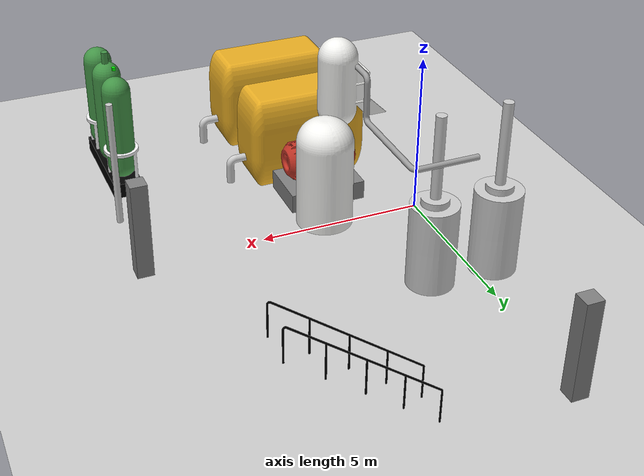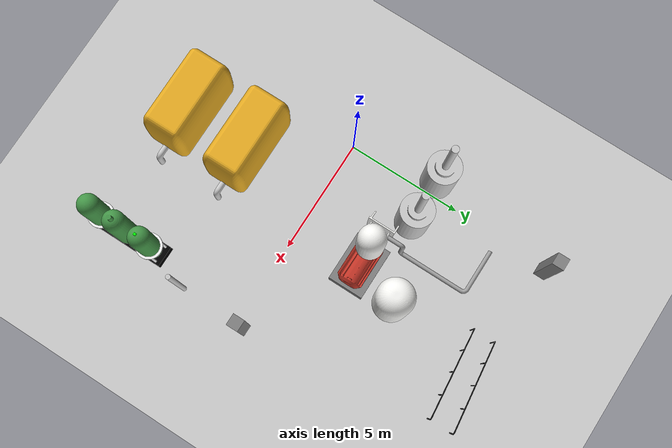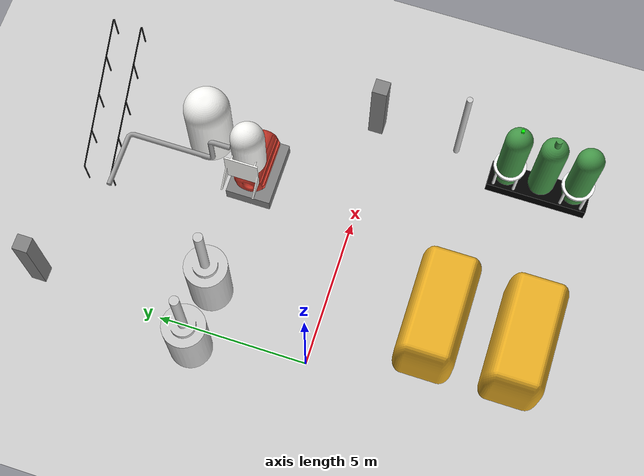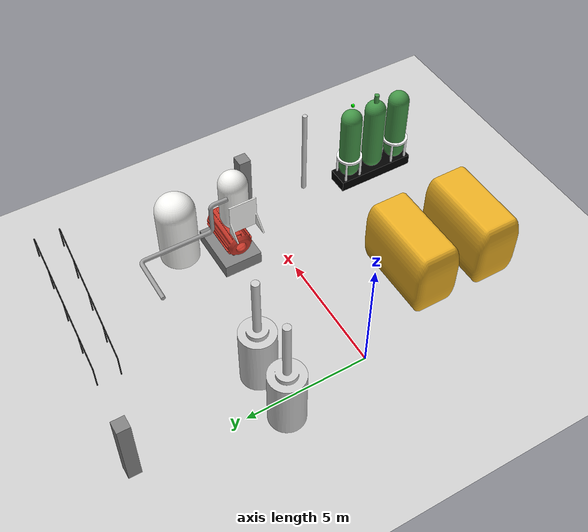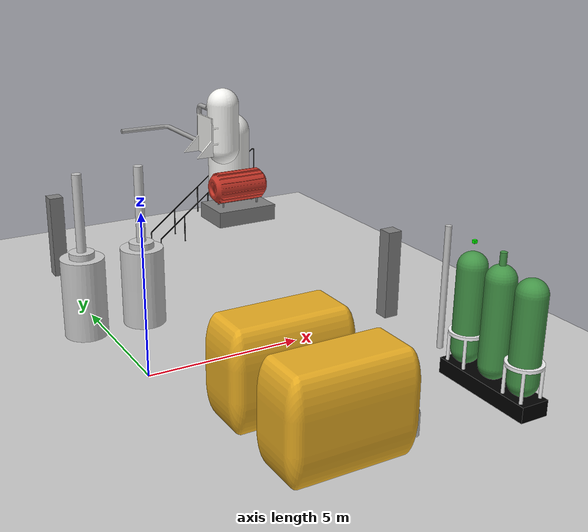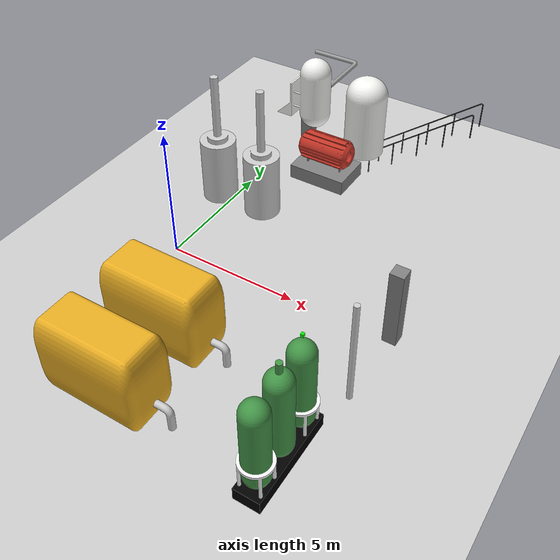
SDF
<sdf version="1.6">
 <world name="default">
  <include><uri>model://ground_plane</uri></include>
  <model name="MezzanineSupports_concrete_3">
   <static>true</static>
   <link name="link_">
    <collision name="collision_MezzanineSupports_concrete_3">
     <geometry><mesh><uri>model://reactor_room/models/MezzanineSupports_concrete_3.dae</uri></mesh></geometry>
    </collision>
    <visual name="visual_MezzanineSupports_concrete_3">
     <geometry><mesh><uri>model://reactor_room/models/MezzanineSupports_concrete_3.dae</uri></mesh></geometry>
    </visual>
   </link>
  </model>
  <model name="tankSet1_pipework_stainlessSteel_4">
   <static>true</static>
   <link name="link_">
    <collision name="collision_tankSet1_pipework_stainlessSteel_4">
     <geometry>
      <mesh><uri>model://reactor_room/models/tankSet1_pipework_stainlessSteel_4.dae</uri></mesh>
     </geometry>
    </collision>
    <visual name="visual_tankSet1_pipework_stainlessSteel_4">
     <geometry>
      <mesh><uri>model://reactor_room/models/tankSet1_pipework_stainlessSteel_4.dae</uri></mesh>
     </geometry>
    </visual>
   </link>
  </model>
  <model name="StairsHandrail_aluminium_2">
   <static>true</static>
   <link name="link_">
    <collision name="collision_StairsHandrail_aluminium_2">
     <geometry><mesh><uri>model://reactor_room/models/StairsHandrail_aluminium_2.dae</uri></mesh></geometry>
    </collision>
    <visual name="visual_StairsHandrail_aluminium_2">
     <geometry><mesh><uri>model://reactor_room/models/StairsHandrail_aluminium_2.dae</uri></mesh></geometry>
    </visual>
   </link>
  </model>
  <model name="tankSet3Support_stainlessSteel_1">
   <static>true</static>
   <link name="link_">
    <collision name="collision_tankSet3Support_stainlessSteel_1">
     <geometry><mesh><uri>model://reactor_room/models/tankSet3Support_stainlessSteel_1.dae</uri></mesh></geometry>
    </collision>
    <visual name="visual_tankSet3Support_stainlessSteel_1">
     <geometry><mesh><uri>model://reactor_room/models/tankSet3Support_stainlessSteel_1.dae</uri></mesh></geometry>
    </visual>
   </link>
  </model>
  <model name="tankSetPlinth_concrete">
   <static>true</static>
   <link name="link_">
    <collision name="collision_tankSetPlinth_concrete">
     <geometry><mesh><uri>model://reactor_room/models/tankSetPlinth_concrete.dae</uri></mesh></geometry>
    </collision>
    <visual name="visual_tankSetPlinth_concrete">
     <geometry><mesh><uri>model://reactor_room/models/tankSetPlinth_concrete.dae</uri></mesh></geometry>
    </visual>
   </link>
  </model>
  <model name="tankSet4_stainlessSteel_1">
   <static>true</static>
   <link name="link_">
    <collision name="collision_tankSet4_stainlessSteel_1">
     <geometry><mesh><uri>model://reactor_room/models/tankSet4_stainlessSteel_1.dae</uri></mesh></geometry>
    </collision>
    <visual name="visual_tankSet4_stainlessSteel_1">
     <geometry><mesh><uri>model://reactor_room/models/tankSet4_stainlessSteel_1.dae</uri></mesh></geometry>
    </visual>
   </link>
   <model name="radiation_source_tankSet4_stainlessSteel_1">
    <pose>-0.599999838268 3.70000002623 2.65 0 0 0</pose>
    <static>true</static>
    <link name="link_radiation_source_tankSet4_stainlessSteel_1">
     <visual name="visual_radiation_source_tankSet4_stainlessSteel_1_0">
      <geometry><box><size>0.1 0.1 0.1</size></box></geometry>
      <material><ambient>1 0.0  0 1.0</ambient><diffuse>1 0.0  0 1.0</diffuse></material>
     </visual>
     <visual name="visual_radiation_source_tankSet4_stainlessSteel_1_1">
      <pose>0 0 2.0 0 0 0</pose>
      <geometry><box><size>0.1 0.1 0.1</size></box></geometry>
      <material><ambient>0 1.0  0 1.0</ambient><diffuse>0 1.0  0 1.0</diffuse></material>
     </visual>
     <sensor name="radiation_source_tankSet4_stainlessSteel_1" type="radiation_source">
      <always_on>1</always_on>
      <update_rate>1.0</update_rate>
      <topic>source_2/gamma</topic>
      <plugin filename="libradiation_source_plugin.so" name="radiation_source_plugin"/>
     </sensor>
    </link>
   </model>
  </model>
  <model name="tankSet1_pipework_stainlessSteel_3">
   <static>true</static>
   <link name="link_">
    <collision name="collision_tankSet1_pipework_stainlessSteel_3">
     <geometry>
      <mesh><uri>model://reactor_room/models/tankSet1_pipework_stainlessSteel_3.dae</uri></mesh>
     </geometry>
    </collision>
    <visual name="visual_tankSet1_pipework_stainlessSteel_3">
     <geometry>
      <mesh><uri>model://reactor_room/models/tankSet1_pipework_stainlessSteel_3.dae</uri></mesh>
     </geometry>
    </visual>
   </link>
  </model>
  <model name="tankSet1_stainlessSteel_2">
   <static>true</static>
   <link name="link_">
    <collision name="collision_tankSet1_stainlessSteel_2">
     <geometry><mesh><uri>model://reactor_room/models/tankSet1_stainlessSteel_2.dae</uri></mesh></geometry>
    </collision>
    <visual name="visual_tankSet1_stainlessSteel_2">
     <geometry><mesh><uri>model://reactor_room/models/tankSet1_stainlessSteel_2.dae</uri></mesh></geometry>
    </visual>
   </link>
   <model name="radiation_source_tankSet1_stainlessSteel_2">
    <pose>2.39999972243 -6.35000010491 0.5 0 0 0</pose>
    <static>true</static>
    <link name="link_radiation_source_tankSet1_stainlessSteel_2">
     <visual name="visual_radiation_source_tankSet1_stainlessSteel_2_0">
      <geometry><box><size>0.1 0.1 0.1</size></box></geometry>
      <material><ambient>1 0.0  0 1.0</ambient><diffuse>1 0.0  0 1.0</diffuse></material>
     </visual>
     <visual name="visual_radiation_source_tankSet1_stainlessSteel_2_1">
      <pose>0 0 2.0 0 0 0</pose>
      <geometry><box><size>0.1 0.1 0.1</size></box></geometry>
      <material><ambient>0 1.0  0 1.0</ambient><diffuse>0 1.0  0 1.0</diffuse></material>
     </visual>
     <sensor name="radiation_source_tankSet1_stainlessSteel_2" type="radiation_source">
      <always_on>1</always_on>
      <update_rate>1.0</update_rate>
      <topic>source_0/gamma</topic>
      <plugin filename="libradiation_source_plugin.so" name="radiation_source_plugin"/>
     </sensor>
    </link>
   </model>
  </model>
  <model name="MezzanineSupports_concrete_2">
   <static>true</static>
   <link name="link_">
    <collision name="collision_MezzanineSupports_concrete_2">
     <geometry><mesh><uri>model://reactor_room/models/MezzanineSupports_concrete_2.dae</uri></mesh></geometry>
    </collision>
    <visual name="visual_MezzanineSupports_concrete_2">
     <geometry><mesh><uri>model://reactor_room/models/MezzanineSupports_concrete_2.dae</uri></mesh></geometry>
    </visual>
   </link>
  </model>
  <model name="tankSet3Tank_stainlessSteel_2">
   <static>true</static>
   <link name="link_">
    <collision name="collision_tankSet3Tank_stainlessSteel_2">
     <geometry><mesh><uri>model://reactor_room/models/tankSet3Tank_stainlessSteel_2.dae</uri></mesh></geometry>
    </collision>
    <visual name="visual_tankSet3Tank_stainlessSteel_2">
     <geometry><mesh><uri>model://reactor_room/models/tankSet3Tank_stainlessSteel_2.dae</uri></mesh></geometry>
    </visual>
   </link>
  </model>
  <model name="verticalPipeSet_stainlessSteel_2">
   <static>true</static>
   <link name="link_">
    <collision name="collision_verticalPipeSet_stainlessSteel_2">
     <geometry><mesh><uri>model://reactor_room/models/verticalPipeSet_stainlessSteel_2.dae</uri></mesh></geometry>
    </collision>
    <visual name="visual_verticalPipeSet_stainlessSteel_2">
     <geometry><mesh><uri>model://reactor_room/models/verticalPipeSet_stainlessSteel_2.dae</uri></mesh></geometry>
    </visual>
   </link>
  </model>
  <model name="MezzaninePipework_stainlessSteel_5">
   <static>true</static>
   <link name="link_">
    <collision name="collision_MezzaninePipework_stainlessSteel_5">
     <geometry>
      <mesh><uri>model://reactor_room/models/MezzaninePipework_stainlessSteel_5.dae</uri></mesh>
     </geometry>
    </collision>
    <visual name="visual_MezzaninePipework_stainlessSteel_5">
     <geometry>
      <mesh><uri>model://reactor_room/models/MezzaninePipework_stainlessSteel_5.dae</uri></mesh>
     </geometry>
    </visual>
   </link>
  </model>
  <model name="MezzanineTankSet1_stainlessSteel">
   <static>true</static>
   <link name="link_">
    <collision name="collision_MezzanineTankSet1_stainlessSteel">
     <geometry><mesh><uri>model://reactor_room/models/MezzanineTankSet1_stainlessSteel.dae</uri></mesh></geometry>
    </collision>
    <visual name="visual_MezzanineTankSet1_stainlessSteel">
     <geometry><mesh><uri>model://reactor_room/models/MezzanineTankSet1_stainlessSteel.dae</uri></mesh></geometry>
    </visual>
   </link>
  </model>
  <model name="MezzanineTankSet3_stainlessSteel">
   <static>true</static>
   <link name="link_">
    <collision name="collision_MezzanineTankSet3_stainlessSteel">
     <geometry><mesh><uri>model://reactor_room/models/MezzanineTankSet3_stainlessSteel.dae</uri></mesh></geometry>
    </collision>
    <visual name="visual_MezzanineTankSet3_stainlessSteel">
     <geometry><mesh><uri>model://reactor_room/models/MezzanineTankSet3_stainlessSteel.dae</uri></mesh></geometry>
    </visual>
   </link>
  </model>
  <model name="tankSet3Tank_stainlessSteel_1">
   <static>true</static>
   <link name="link_">
    <collision name="collision_tankSet3Tank_stainlessSteel_1">
     <geometry><mesh><uri>model://reactor_room/models/tankSet3Tank_stainlessSteel_1.dae</uri></mesh></geometry>
    </collision>
    <visual name="visual_tankSet3Tank_stainlessSteel_1">
     <geometry><mesh><uri>model://reactor_room/models/tankSet3Tank_stainlessSteel_1.dae</uri></mesh></geometry>
    </visual>
   </link>
   <model name="radiation_source_tankSet3Tank_stainlessSteel_1">
    <pose>8.06999980548 -4.45000035275 2.18 0 0 0</pose>
    <static>true</static>
    <link name="link_radiation_source_tankSet3Tank_stainlessSteel_1">
     <visual name="visual_radiation_source_tankSet3Tank_stainlessSteel_1_0">
      <geometry><box><size>0.1 0.1 0.1</size></box></geometry>
      <material><ambient>1 0.0  0 1.0</ambient><diffuse>1 0.0  0 1.0</diffuse></material>
     </visual>
     <visual name="visual_radiation_source_tankSet3Tank_stainlessSteel_1_1">
      <pose>0 0 2.0 0 0 0</pose>
      <geometry><box><size>0.1 0.1 0.1</size></box></geometry>
      <material><ambient>0 1.0  0 1.0</ambient><diffuse>0 1.0  0 1.0</diffuse></material>
     </visual>
     <sensor name="radiation_source_tankSet3Tank_stainlessSteel_1" type="radiation_source">
      <always_on>1</always_on>
      <update_rate>1.0</update_rate>
      <topic>source_3/gamma</topic>
      <plugin filename="libradiation_source_plugin.so" name="radiation_source_plugin"/>
     </sensor>
    </link>
   </model>
  </model>
  <model name="tankSet3Support_stainlessSteel_3">
   <static>true</static>
   <link name="link_">
    <collision name="collision_tankSet3Support_stainlessSteel_3">
     <geometry><mesh><uri>model://reactor_room/models/tankSet3Support_stainlessSteel_3.dae</uri></mesh></geometry>
    </collision>
    <visual name="visual_tankSet3Support_stainlessSteel_3">
     <geometry><mesh><uri>model://reactor_room/models/tankSet3Support_stainlessSteel_3.dae</uri></mesh></geometry>
    </visual>
   </link>
  </model>
  <model name="StairsHandrail_aluminium_1">
   <static>true</static>
   <link name="link_">
    <collision name="collision_StairsHandrail_aluminium_1">
     <geometry><mesh><uri>model://reactor_room/models/StairsHandrail_aluminium_1.dae</uri></mesh></geometry>
    </collision>
    <visual name="visual_StairsHandrail_aluminium_1">
     <geometry><mesh><uri>model://reactor_room/models/StairsHandrail_aluminium_1.dae</uri></mesh></geometry>
    </visual>
   </link>
  </model>
  <model name="tankSet1_stainlessSteel_1">
   <static>true</static>
   <link name="link_">
    <collision name="collision_tankSet1_stainlessSteel_1">
     <geometry><mesh><uri>model://reactor_room/models/tankSet1_stainlessSteel_1.dae</uri></mesh></geometry>
    </collision>
    <visual name="visual_tankSet1_stainlessSteel_1">
     <geometry><mesh><uri>model://reactor_room/models/tankSet1_stainlessSteel_1.dae</uri></mesh></geometry>
    </visual>
   </link>
  </model>
  <model name="MezzanineTankSet_stainlessSteel">
   <static>true</static>
   <link name="link_">
    <collision name="collision_MezzanineTankSet_stainlessSteel">
     <geometry><mesh><uri>model://reactor_room/models/MezzanineTankSet_stainlessSteel.dae</uri></mesh></geometry>
    </collision>
    <visual name="visual_MezzanineTankSet_stainlessSteel">
     <geometry><mesh><uri>model://reactor_room/models/MezzanineTankSet_stainlessSteel.dae</uri></mesh></geometry>
    </visual>
   </link>
  </model>
  <model name="tankSet4_stainlessSteel_2">
   <static>true</static>
   <link name="link_">
    <collision name="collision_tankSet4_stainlessSteel_2">
     <geometry><mesh><uri>model://reactor_room/models/tankSet4_stainlessSteel_2.dae</uri></mesh></geometry>
    </collision>
    <visual name="visual_tankSet4_stainlessSteel_2">
     <geometry><mesh><uri>model://reactor_room/models/tankSet4_stainlessSteel_2.dae</uri></mesh></geometry>
    </visual>
   </link>
   <model name="radiation_source_tankSet4_stainlessSteel_2">
    <pose>1.40000016173 3.6999999388 2.65 0 0 0</pose>
    <static>true</static>
    <link name="link_radiation_source_tankSet4_stainlessSteel_2">
     <visual name="visual_radiation_source_tankSet4_stainlessSteel_2_0">
      <geometry><box><size>0.1 0.1 0.1</size></box></geometry>
      <material><ambient>1 0.0  0 1.0</ambient><diffuse>1 0.0  0 1.0</diffuse></material>
     </visual>
     <visual name="visual_radiation_source_tankSet4_stainlessSteel_2_1">
      <pose>0 0 2.0 0 0 0</pose>
      <geometry><box><size>0.1 0.1 0.1</size></box></geometry>
      <material><ambient>0 1.0  0 1.0</ambient><diffuse>0 1.0  0 1.0</diffuse></material>
     </visual>
     <sensor name="radiation_source_tankSet4_stainlessSteel_2" type="radiation_source">
      <always_on>1</always_on>
      <update_rate>1.0</update_rate>
      <topic>source_4/gamma</topic>
      <plugin filename="libradiation_source_plugin.so" name="radiation_source_plugin"/>
     </sensor>
    </link>
   </model>
  </model>
  <model name="MezzanineTankSetPlinth_concrete">
   <static>true</static>
   <link name="link_">
    <collision name="collision_MezzanineTankSetPlinth_concrete">
     <geometry><mesh><uri>model://reactor_room/models/MezzanineTankSetPlinth_concrete.dae</uri></mesh></geometry>
    </collision>
    <visual name="visual_MezzanineTankSetPlinth_concrete">
     <geometry><mesh><uri>model://reactor_room/models/MezzanineTankSetPlinth_concrete.dae</uri></mesh></geometry>
    </visual>
   </link>
  </model>
  <model name="tankSet3Tank_stainlessSteel_3">
   <static>true</static>
   <link name="link_">
    <collision name="collision_tankSet3Tank_stainlessSteel_3">
     <geometry><mesh><uri>model://reactor_room/models/tankSet3Tank_stainlessSteel_3.dae</uri></mesh></geometry>
    </collision>
    <visual name="visual_tankSet3Tank_stainlessSteel_3">
     <geometry><mesh><uri>model://reactor_room/models/tankSet3Tank_stainlessSteel_3.dae</uri></mesh></geometry>
    </visual>
   </link>
  </model>
 </world>
</sdf>
